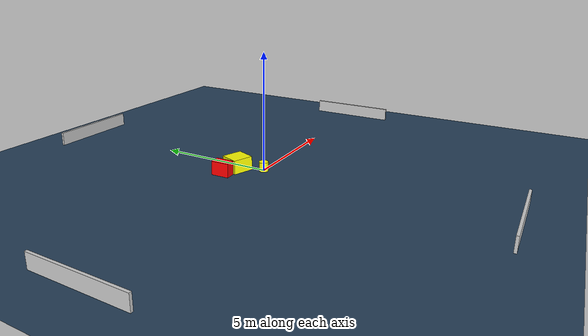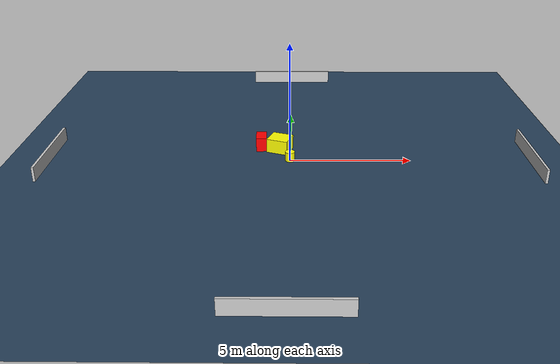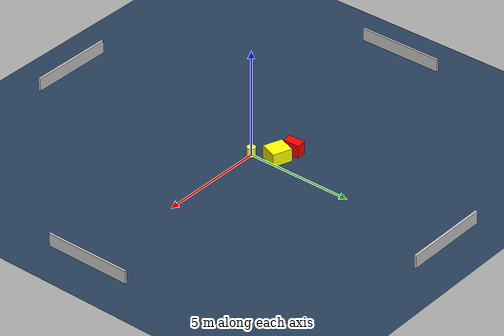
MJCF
<?xml version="1.0" ?>
<mujoco model="generated_environment">
  <option timestep="0.01" integrator="RK4" cone="elliptic"/>
  <default>
    <geom density="1"/>
  </default>
  <asset>
    <texture builtin="gradient" height="3072" name="skybox" rgb1="0.3 0.5 0.7" rgb2="0 0 0" type="skybox" width="512"/>
    <texture builtin="checker" height="300" name="groundplane" rgb1="0.2 0.3 0.4" rgb2="0.1 0.2 0.3" type="2d" width="300"/>
    <material name="groundplane" reflectance="0.2" texrepeat="5 5" texture="groundplane"/>
  </asset>
  <worldbody>
    <light dir="0 0 -1" directional="true" pos="0 0 1.5"/>
    <geom condim="3" friction="0.5 0.005 0.001" material="groundplane" name="floor" pos="0 0 0" size="0 0 0.05" type="plane"/>
    <body name="walls">
      <geom name="wall_1" condim="4" pos="-10.0 0.0 0.3" rgba="0.800000011920929 0.800000011920929 0.800000011920929 1.0" size="0.05 2.0 0.3" type="box"/>
      <geom name="wall_2" condim="4" pos="10.0 0.0 0.3" rgba="0.800000011920929 0.800000011920929 0.800000011920929 1.0" size="0.05 2.0 0.3" type="box"/>
      <geom name="wall_3" condim="4" pos="0.0 -10.0 0.3" rgba="0.800000011920929 0.800000011920929 0.800000011920929 1.0" size="2.0 0.05 0.3" type="box"/>
      <geom name="wall_4" condim="4" pos="0.0 10.0 0.3" rgba="0.800000011920929 0.800000011920929 0.800000011920929 1.0" size="2.0 0.05 0.3" type="box"/>
    </body>
    <body name="robot">
      <joint name="joint_x" type="slide" pos="0 0 0" axis="1 0 0"/>
      <joint name="joint_y" type="slide" pos="0 0 0" axis="0 1 0"/>
      <geom name="robot" type="cylinder" pos="0.0 0.0 0.2" size="0.2 0.2 0.0" mass="5.0" friction="1.0 0.005 0.0001" condim="4" rgba="1.0 1.0 0.0 1.0"/>
    </body>
    <body name="obstacle_1_movable">
      <geom name="obstacle_1_movable" condim="4" pos="-0.43565829385745863 1.03469630055013 0.3" euler="0 0 159.7332996383437" friction="0.0 0.005 0.001" rgba="1.0 1.0 0.0 1.0" size="0.45548461924220396 0.4125824007423612 0.3" type="box" mass="0.1"/>
      <joint type="free"/>
    </body>
    <body name="obstacle_2_static">
      <geom name="obstacle_2_static" condim="4" pos="-1.239166194555003 1.250720149960747 0.3" euler="0 0 2.2019117382726705" friction="0.0 0.005 0.001" rgba="1.0 0.0 0.0 1.0" size="0.2233856181766648 0.38509624569528056 0.3" type="box"/>
    </body>
  </worldbody>
  <actuator>
    <motor name="actuator_x" joint="joint_x" gear="1" ctrlrange="-1 1"/>
    <motor name="actuator_y" joint="joint_y" gear="1" ctrlrange="-1 1"/>
  </actuator>
</mujoco>
